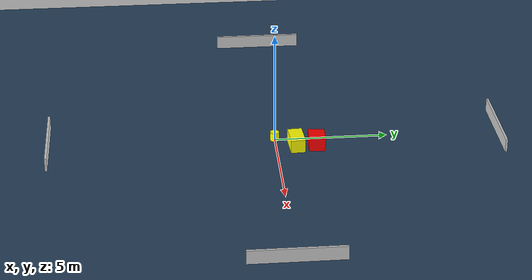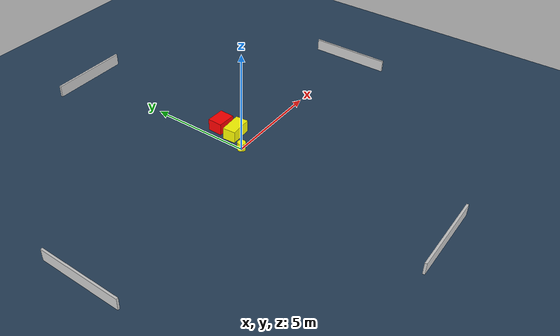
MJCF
<?xml version="1.0" ?>
<mujoco model="generated_environment">
  <option timestep="0.01" integrator="RK4" cone="elliptic"/>
  <default>
    <geom density="1"/>
  </default>
  <asset>
    <texture builtin="gradient" height="3072" name="skybox" rgb1="0.3 0.5 0.7" rgb2="0 0 0" type="skybox" width="512"/>
    <texture builtin="checker" height="300" name="groundplane" rgb1="0.2 0.3 0.4" rgb2="0.1 0.2 0.3" type="2d" width="300"/>
    <material name="groundplane" reflectance="0.2" texrepeat="5 5" texture="groundplane"/>
  </asset>
  <worldbody>
    <light dir="0 0 -1" directional="true" pos="0 0 1.5"/>
    <geom condim="3" friction="0.5 0.005 0.001" material="groundplane" name="floor" pos="0 0 0" size="0 0 0.05" type="plane"/>
    <body name="walls">
      <geom name="wall_1" condim="4" pos="-10.0 0.0 0.3" rgba="0.800000011920929 0.800000011920929 0.800000011920929 1.0" size="0.05 2.0 0.3" type="box"/>
      <geom name="wall_2" condim="4" pos="10.0 0.0 0.3" rgba="0.800000011920929 0.800000011920929 0.800000011920929 1.0" size="0.05 2.0 0.3" type="box"/>
      <geom name="wall_3" condim="4" pos="0.0 -10.0 0.3" rgba="0.800000011920929 0.800000011920929 0.800000011920929 1.0" size="2.0 0.05 0.3" type="box"/>
      <geom name="wall_4" condim="4" pos="0.0 10.0 0.3" rgba="0.800000011920929 0.800000011920929 0.800000011920929 1.0" size="2.0 0.05 0.3" type="box"/>
    </body>
    <body name="robot">
      <joint name="joint_x" type="slide" pos="0 0 0" axis="1 0 0"/>
      <joint name="joint_y" type="slide" pos="0 0 0" axis="0 1 0"/>
      <geom name="robot" type="cylinder" pos="0.0 0.0 0.2" size="0.2 0.2 0.0" mass="5.0" friction="1.0 0.005 0.0001" condim="4" rgba="1.0 1.0 0.0 1.0"/>
    </body>
    <body name="obstacle_1_movable">
      <geom name="obstacle_1_movable" condim="4" pos="0.7256726160784378 0.8945638715574954 0.3" euler="0 0 273.3754269180007" friction="0.0 0.005 0.001" rgba="1.0 1.0 0.0 1.0" size="0.31910572620152305 0.5695674968959727 0.3" type="box" mass="0.1"/>
      <joint type="free"/>
    </body>
    <body name="obstacle_2_static">
      <geom name="obstacle_2_static" condim="4" pos="0.7470426925480738 1.7859465565622397 0.3" euler="0 0 178.35994610264547" friction="0.0 0.005 0.001" rgba="1.0 0.0 0.0 1.0" size="0.466159181903152 0.3639791610796923 0.3" type="box"/>
    </body>
  </worldbody>
  <actuator>
    <motor name="actuator_x" joint="joint_x" gear="1" ctrlrange="-1 1"/>
    <motor name="actuator_y" joint="joint_y" gear="1" ctrlrange="-1 1"/>
  </actuator>
</mujoco>
